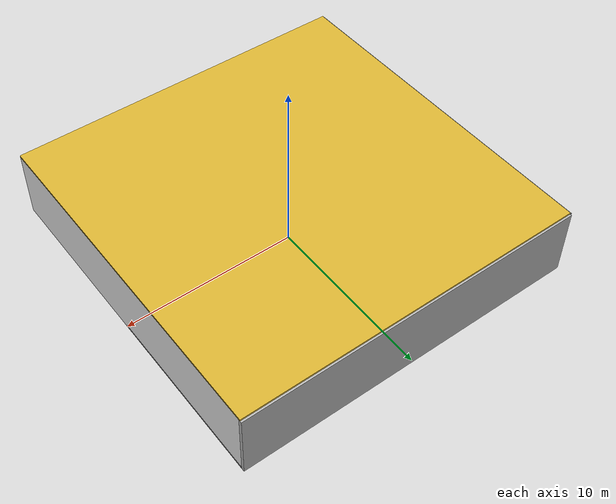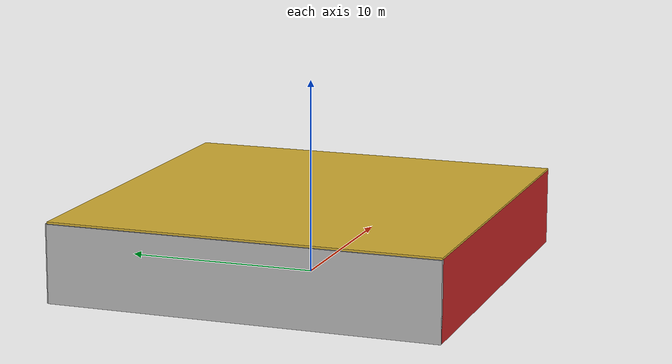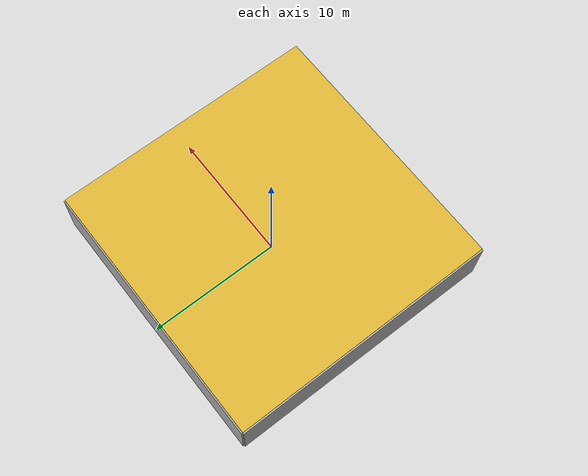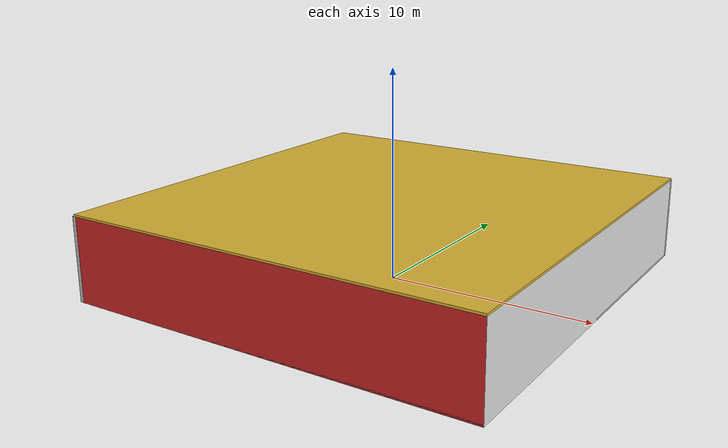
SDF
<sdf version="1.4">
 <world name="default">
  <physics type="ode">
   <max_step_size>0.001</max_step_size>
   <real_time_factor>1</real_time_factor>
   <real_time_update_rate>1000</real_time_update_rate>
   <gravity>0 0 -9.8</gravity>
  </physics>
  <scene><ambient>0.4 0.4 0.4 1</ambient><background>0.7 0.7 0.7 1</background><shadows>1</shadows></scene>
  <model name="Surrounding">
   <static>1</static>
   <link name="Ceiling">
    <collision name="Ceiling_Collision"><geometry><box><size>20 20 0.1</size></box></geometry></collision>
    <visual name="Ceiling_Visual">
     <geometry><box><size>20 20 0.1</size></box></geometry>
     <material>
      <script><uri>file://media/materials/scripts/gazebo.material</uri><name>Gazebo/Gold</name></script>
     </material>
    </visual>
    <pose>0 0 4.05 0 0 0</pose>
   </link>
   <link name="Wall_South">
    <collision name="Wall_South_Collision">
     <geometry><box><size>20 0 4</size></box></geometry>
     <pose>0 0 2 0 -0 0</pose>
    </collision>
    <visual name="Wall_South_Visual">
     <pose>0 0 2 0 -0 0</pose>
     <geometry><box><size>20 0 4</size></box></geometry>
     <material>
      <script><uri>file://media/materials/scripts/gazebo.material</uri><name>Gazebo/RedBright</name></script>
     </material>
    </visual>
    <velocity_decay><linear>0</linear><angular>0</angular></velocity_decay>
    <pose>0 -10 0 0 -0 0</pose>
   </link>
   <link name="Wall_East">
    <collision name="Wall_21_Collision">
     <geometry><box><size>20 0 4</size></box></geometry>
     <pose>0 0 2 0 -0 0</pose>
    </collision>
    <visual name="Wall_21_Visual">
     <pose>0 0 2 0 -0 0</pose>
     <geometry><box><size>20 0 4</size></box></geometry>
     <material>
      <script><uri>file://media/materials/scripts/gazebo.material</uri><name>Gazebo/WhiteGlow</name></script>
     </material>
    </visual>
    <velocity_decay><linear>0</linear><angular>0</angular></velocity_decay>
    <pose>10 0 0 0 -0 1.5708</pose>
   </link>
   <link name="Wall_North">
    <collision name="Wall_22_Collision">
     <geometry><box><size>20 0.2 4</size></box></geometry>
     <pose>0 0 2 0 -0 0</pose>
    </collision>
    <visual name="Wall_22_Visual">
     <pose>0 0 2 0 -0 0</pose>
     <geometry><box><size>20 0.2 4</size></box></geometry>
     <material>
      <script><uri>file://media/materials/scripts/gazebo.material</uri><name>Gazebo/LightOff</name></script>
     </material>
    </visual>
    <velocity_decay><linear>0</linear><angular>0</angular></velocity_decay>
    <pose>0 10 0 0 -0 0</pose>
   </link>
   <link name="Wall_West">
    <collision name="Wall_23_Collision">
     <geometry><box><size>20 0.2 4</size></box></geometry>
     <pose>0 0 2 0 -0 0</pose>
    </collision>
    <visual name="Wall_23_Visual">
     <pose>0 0 2 0 -0 0</pose>
     <geometry><box><size>20 0.2 4</size></box></geometry>
     <material>
      <script><uri>file://media/materials/scripts/gazebo.material</uri><name>Gazebo/LightOn</name></script>
     </material>
    </visual>
    <velocity_decay><linear>0</linear><angular>0</angular></velocity_decay>
    <pose>-10 0 0 0 0 -1.5708</pose>
   </link>
   <link name="Ground_link">
    <collision name="collision">
     <pose>0 0 .05 0 -0 0</pose>
     <geometry><box><size>20 20 0.1</size></box></geometry>
    </collision>
    <visual name="visual">
     <pose>0 0 .05 0 -0 0</pose>
     <geometry><box><size>20 20 0.1</size></box></geometry>
     <material>
      <script><uri>file://media/materials/scripts/gazebo.material</uri><name>Gazebo/PioneerBody</name></script>
     </material>
    </visual>
   </link>
   <static>1</static>
  </model>
  <spherical_coordinates>
   <surface_model>EARTH_WGS84</surface_model>
   <latitude_deg>0</latitude_deg>
   <longitude_deg>0</longitude_deg>
   <elevation>0</elevation>
   <heading_deg>0</heading_deg>
  </spherical_coordinates>
  <light name="lightball_0" type="diffuse">
   <diffuse>0.8 0.8 0.8 1</diffuse>
   <specular>0.2 0.2 0.2 1</specular>
   <attenuation>
    <range>100</range>
    <constant>0.7</constant>
    <linear>0.01</linear>
    <quadratic>0.001</quadratic>
   </attenuation>
   <direction>-0.5 0.1 -0.9</direction>
   <pose>-2.66896889986 -4.60320753518 0.541006762463 0 0 0</pose>
  </light>
  <light name="lightball_1" type="diffuse">
   <diffuse>0.8 0.8 0.8 1</diffuse>
   <specular>0.2 0.2 0.2 1</specular>
   <attenuation>
    <range>100</range>
    <constant>0.7</constant>
    <linear>0.01</linear>
    <quadratic>0.001</quadratic>
   </attenuation>
   <direction>-0.5 0.1 -0.9</direction>
   <pose>-7.22726843688 -3.70824557452 1.38775745398 0 0 0</pose>
  </light>
  <light name="lightball_2" type="diffuse">
   <diffuse>0.8 0.8 0.8 1</diffuse>
   <specular>0.2 0.2 0.2 1</specular>
   <attenuation>
    <range>100</range>
    <constant>0.7</constant>
    <linear>0.01</linear>
    <quadratic>0.001</quadratic>
   </attenuation>
   <direction>-0.5 0.1 -0.9</direction>
   <pose>-2.42441475463 -6.42170939559 2.32467919263 0 0 0</pose>
  </light>
  <light name="lightball_3" type="diffuse">
   <diffuse>0.8 0.8 0.8 1</diffuse>
   <specular>0.2 0.2 0.2 1</specular>
   <attenuation>
    <range>100</range>
    <constant>0.7</constant>
    <linear>0.01</linear>
    <quadratic>0.001</quadratic>
   </attenuation>
   <direction>-0.5 0.1 -0.9</direction>
   <pose>-5.24899428513 -4.59598100001 1.07209051572 0 0 0</pose>
  </light>
  <light name="lightball_4" type="diffuse">
   <diffuse>0.8 0.8 0.8 1</diffuse>
   <specular>0.2 0.2 0.2 1</specular>
   <attenuation>
    <range>100</range>
    <constant>0.7</constant>
    <linear>0.01</linear>
    <quadratic>0.001</quadratic>
   </attenuation>
   <direction>-0.5 0.1 -0.9</direction>
   <pose>4.1216534615 0.788283461238 1.79900620752 0 0 0</pose>
  </light>
  <light name="lightball_5" type="diffuse">
   <diffuse>0.8 0.8 0.8 1</diffuse>
   <specular>0.2 0.2 0.2 1</specular>
   <attenuation>
    <range>100</range>
    <constant>0.7</constant>
    <linear>0.01</linear>
    <quadratic>0.001</quadratic>
   </attenuation>
   <direction>-0.5 0.1 -0.9</direction>
   <pose>7.06971643446 3.00421557206 2.98070690885 0 0 0</pose>
  </light>
  <light name="lightball_6" type="diffuse">
   <diffuse>0.8 0.8 0.8 1</diffuse>
   <specular>0.2 0.2 0.2 1</specular>
   <attenuation>
    <range>100</range>
    <constant>0.7</constant>
    <linear>0.01</linear>
    <quadratic>0.001</quadratic>
   </attenuation>
   <direction>-0.5 0.1 -0.9</direction>
   <pose>4.28068776974 -2.35968477386 3.02693951018 0 0 0</pose>
  </light>
  <light name="lightball_7" type="diffuse">
   <diffuse>0.8 0.8 0.8 1</diffuse>
   <specular>0.2 0.2 0.2 1</specular>
   <attenuation>
    <range>100</range>
    <constant>0.7</constant>
    <linear>0.01</linear>
    <quadratic>0.001</quadratic>
   </attenuation>
   <direction>-0.5 0.1 -0.9</direction>
   <pose>9.86762816941 8.47424590435 2.81358369539 0 0 0</pose>
  </light>
  <light name="lightball_8" type="diffuse">
   <diffuse>0.8 0.8 0.8 1</diffuse>
   <specular>0.2 0.2 0.2 1</specular>
   <attenuation>
    <range>100</range>
    <constant>0.7</constant>
    <linear>0.01</linear>
    <quadratic>0.001</quadratic>
   </attenuation>
   <direction>-0.5 0.1 -0.9</direction>
   <pose>6.78548331039 6.55266945661 3.46848315248 0 0 0</pose>
  </light>
  <light name="lightball_9" type="diffuse">
   <diffuse>0.8 0.8 0.8 1</diffuse>
   <specular>0.2 0.2 0.2 1</specular>
   <attenuation>
    <range>100</range>
    <constant>0.7</constant>
    <linear>0.01</linear>
    <quadratic>0.001</quadratic>
   </attenuation>
   <direction>-0.5 0.1 -0.9</direction>
   <pose>-7.6529214208 -9.97286272561 1.970411137 0 0 0</pose>
  </light>
  <light name="lightball_10" type="diffuse">
   <diffuse>0.8 0.8 0.8 1</diffuse>
   <specular>0.2 0.2 0.2 1</specular>
   <attenuation>
    <range>100</range>
    <constant>0.7</constant>
    <linear>0.01</linear>
    <quadratic>0.001</quadratic>
   </attenuation>
   <direction>-0.5 0.1 -0.9</direction>
   <pose>-4.90379001853 -2.33262681008 1.85543566031 0 0 0</pose>
  </light>
  <light name="lightball_11" type="diffuse">
   <diffuse>0.8 0.8 0.8 1</diffuse>
   <specular>0.2 0.2 0.2 1</specular>
   <attenuation>
    <range>100</range>
    <constant>0.7</constant>
    <linear>0.01</linear>
    <quadratic>0.001</quadratic>
   </attenuation>
   <direction>-0.5 0.1 -0.9</direction>
   <pose>-2.00778962198 8.38834282343 2.97022759042 0 0 0</pose>
  </light>
  <light name="lightball_12" type="diffuse">
   <diffuse>0.8 0.8 0.8 1</diffuse>
   <specular>0.2 0.2 0.2 1</specular>
   <attenuation>
    <range>100</range>
    <constant>0.7</constant>
    <linear>0.01</linear>
    <quadratic>0.001</quadratic>
   </attenuation>
   <direction>-0.5 0.1 -0.9</direction>
   <pose>5.31021463211 -7.89478100821 1.75910951847 0 0 0</pose>
  </light>
  <light name="lightball_13" type="diffuse">
   <diffuse>0.8 0.8 0.8 1</diffuse>
   <specular>0.2 0.2 0.2 1</specular>
   <attenuation>
    <range>100</range>
    <constant>0.7</constant>
    <linear>0.01</linear>
    <quadratic>0.001</quadratic>
   </attenuation>
   <direction>-0.5 0.1 -0.9</direction>
   <pose>-0.279655871434 2.33855270918 2.42705026956 0 0 0</pose>
  </light>
  <include>
   <uri>model://textured_shapes</uri>
   <pose>-0.965278353815 1.20327521848 0 0 0 0.117621628258</pose>
  </include>
  <include>
   <uri>model://robocup_3Dsim_goal</uri>
   <pose>0.722212681471 -0.835060549206 0 0 0 0.582981793524</pose>
  </include>
  <include>
   <uri>model://construction_cone</uri>
   <pose>7.43878054445 -5.02281289972 0 0 0 1.50741955671</pose>
  </include>
 </world>
</sdf>

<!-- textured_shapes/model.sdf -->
<sdf version="1.6">
  <model name="textured_shapes">
    <pose>0 0 0.5 0 0 0</pose>
    <link name="box">
      <pose>0 -1.5 0 0 0 0</pose>
      <collision name="collision">
        <geometry>
          <box>
            <size>1 1 1</size>
          </box>
        </geometry>
      </collision>
      <visual name="visual">
        <geometry>
          <box>
            <size>1 1 1</size>
          </box>
        </geometry>
        <material>
          <script>
            <uri>model://../model_source/models/textured_shapes/materials/scripts</uri>
            <uri>model://../model_source/models/textured_shapes/materials/textures</uri>
            <name>TexturedShape/Squares</name>
          </script>
        </material>
      </visual>
    </link>
    <link name="sphere">
      <collision name="collision">
        <geometry>
          <sphere>
            <radius>0.5</radius>
          </sphere>
        </geometry>
      </collision>
      <visual name="visual">
        <geometry>
          <sphere>
            <radius>0.5</radius>
          </sphere>
        </geometry>
        <material>
          <script>
            <uri>model://../model_source/models/textured_shapes/materials/scripts</uri>
            <uri>model://../model_source/models/textured_shapes/materials/textures</uri>
            <name>TexturedShape/Squares</name>
          </script>
        </material>
      </visual>
    </link>
    <link name="cylinder">
      <pose>0 1.5 0 0 0 0</pose>
      <collision name="collision">
        <geometry>
          <cylinder>
            <radius>0.5</radius>
            <length>1</length>
          </cylinder>
        </geometry>
      </collision>
      <visual name="visual">
        <geometry>
          <cylinder>
            <radius>0.5</radius>
            <length>1</length>
          </cylinder>
        </geometry>
        <material>
          <script>
            <uri>model://../model_source/models/textured_shapes/materials/scripts</uri>
            <uri>model://../model_source/models/textured_shapes/materials/textures</uri>
            <name>TexturedShape/Squares</name>
          </script>
        </material>
      </visual>
    </link>
  </model>
</sdf>

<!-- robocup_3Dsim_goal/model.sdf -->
<sdf version="1.5">
  <model name="robocup_3d_goal">
    <static>true</static>
    <link name="left_post">
      <pose>0 1.05 0.45 0 0 0</pose>
      <collision name="collision">
        <geometry>
          <cylinder>
            <radius>0.05</radius>
            <length>0.9</length>
          </cylinder>
        </geometry>
      </collision>
      <visual name="visual">
        <geometry>
          <cylinder>
            <radius>0.05</radius>
            <length>0.9</length>
          </cylinder>
        </geometry>
        <material>
          <script>
            <uri>file://media/materials/scripts/gazebo.material</uri>
            <name>Gazebo/ZincYellow</name>
          </script>
        </material>
      </visual>
    </link>
    <link name="left_support_horiz_lower">
      <pose>0.30 1.05 0.01 0 0 0</pose>
      <collision name="collision">
        <geometry>
          <box>
            <size>0.50 0.02 0.02</size>
          </box>
        </geometry>
      </collision>
      <visual name="visual">
        <geometry>
          <box>
            <size>0.50 0.02 0.02</size>
          </box>
        </geometry>
        <material>
          <script>
            <uri>file://media/materials/scripts/gazebo.material</uri>
            <name>Gazebo/White</name>
          </script>
        </material>
      </visual>
    </link>
    <link name="left_support_horiz_upper">
      <pose>0.30 1.05 0.79 0 0 0</pose>
      <collision name="collision">
        <geometry>
          <box>
            <size>0.50 0.02 0.02</size>
          </box>
        </geometry>
      </collision>
      <visual name="visual">
        <geometry>
          <box>
            <size>0.50 0.02 0.02</size>
          </box>
        </geometry>
        <material>
          <script>
            <uri>file://media/materials/scripts/gazebo.material</uri>
            <name>Gazebo/White</name>
          </script>
        </material>
      </visual>
    </link>
    <link name="left_support_vertical">
      <pose>0.56 1.05 0.4 0 1.5708 0</pose>
      <collision name="collision">
        <geometry>
          <box>
            <size>0.80 0.02 0.02</size>
          </box>
        </geometry>
      </collision>
      <visual name="visual">
        <geometry>
          <box>
            <size>0.80 0.02 0.02</size>
          </box>
        </geometry>
        <material>
          <script>
            <uri>file://media/materials/scripts/gazebo.material</uri>
            <name>Gazebo/White</name>
          </script>
        </material>
      </visual>
    </link>
    <link name="right_support_horiz_lower">
      <pose>0.30 -1.05 0.01 0 0 0</pose>
      <collision name="collision">
        <geometry>
          <box>
            <size>0.50 0.02 0.02</size>
          </box>
        </geometry>
      </collision>
      <visual name="visual">
        <geometry>
          <box>
            <size>0.50 0.02 0.02</size>
          </box>
        </geometry>
        <material>
          <script>
            <uri>file://media/materials/scripts/gazebo.material</uri>
            <name>Gazebo/White</name>
          </script>
        </material>
      </visual>
    </link>
    <link name="right_support_horiz_upper">
      <pose>0.30 -1.05 0.79 0 0 0</pose>
      <collision name="collision">
        <geometry>
          <box>
            <size>0.50 0.02 0.02</size>
          </box>
        </geometry>
      </collision>
      <visual name="visual">
        <geometry>
          <box>
            <size>0.50 0.02 0.02</size>
          </box>
        </geometry>
        <material>
          <script>
            <uri>file://media/materials/scripts/gazebo.material</uri>
            <name>Gazebo/White</name>
          </script>
        </material>
      </visual>
    </link>
    <link name="right_support_vertical">
      <pose>0.56 -1.05 0.4 0 1.5708 0</pose>
      <collision name="collision">
        <geometry>
          <box>
            <size>0.80 0.02 0.02</size>
          </box>
        </geometry>
      </collision>
      <visual name="visual">
        <geometry>
          <box>
            <size>0.80 0.02 0.02</size>
          </box>
        </geometry>
        <material>
          <script>
            <uri>file://media/materials/scripts/gazebo.material</uri>
            <name>Gazebo/White</name>
          </script>
        </material>
      </visual>
    </link>
    <link name="center_support_horiz_lower">
      <pose>0.56 0 0.01 0 1.5708 0</pose>
      <collision name="collision">
        <geometry>
          <box>
            <size>0.02 2.08 0.02</size>
          </box>
        </geometry>
      </collision>
      <visual name="visual">
        <geometry>
          <box>
            <size>0.02 2.08 0.02</size>
          </box>
        </geometry>
        <material>
          <script>
            <uri>file://media/materials/scripts/gazebo.material</uri>
            <name>Gazebo/White</name>
          </script>
        </material>
      </visual>
    </link>
    <link name="center_support_horiz_upper">
      <pose>0.56 0 0.79 0 1.5708 0</pose>
      <collision name="collision">
        <geometry>
          <box>
            <size>0.02 2.08 0.02</size>
          </box>
        </geometry>
      </collision>
      <visual name="visual">
        <geometry>
          <box>
            <size>0.02 2.08 0.02</size>
          </box>
        </geometry>
        <material>
          <script>
            <uri>file://media/materials/scripts/gazebo.material</uri>
            <name>Gazebo/White</name>
          </script>
        </material>
      </visual>
    </link>
    <link name="right_post">
      <pose>0 -1.05 0.45 0 0 0</pose>
      <collision name="collision">
        <geometry>
          <cylinder>
            <radius>0.05</radius>
            <length>0.9</length>
          </cylinder>
        </geometry>
      </collision>
      <visual name="visual">
        <geometry>
          <cylinder>
            <radius>0.05</radius>
            <length>0.9</length>
          </cylinder>
        </geometry>
        <material>
          <script>
            <uri>file://media/materials/scripts/gazebo.material</uri>
            <name>Gazebo/ZincYellow</name>
          </script>
        </material>
      </visual>
    </link>
    <link name="crossbar">
      <pose>0 0 0.85 1.57 1.57 0</pose>
      <collision name="collision">
        <geometry>
          <cylinder>
            <radius>0.05</radius>
            <length>2.0</length>
          </cylinder>
        </geometry>
      </collision>
      <visual name="visual">
        <geometry>
          <cylinder>
            <radius>0.05</radius>
            <length>2.0</length>
          </cylinder>
        </geometry>
        <material>
          <script>
            <uri>file://media/materials/scripts/gazebo.material</uri>
            <name>Gazebo/ZincYellow</name>
          </script>
        </material>
      </visual>
    </link>
    <link name="center_net">
      <pose>0.56 0 0.40 0 0 0</pose>
      <collision name="collision">
        <geometry>
          <box>
            <size>0.01 2.1 0.80</size>
          </box>
        </geometry>
      </collision>
      <visual name="visual">
        <geometry>
          <box>
            <size>0.01 2.1 0.80</size>
          </box>
        </geometry>
        <material>
          <script>
            <uri>model://../model_source/models/robocup09_spl_field/materials/scripts/</uri>
            <uri>model://../model_source/models/robocup09_spl_field/materials/textures/</uri>
            <name>RoboCup/Net</name>
          </script>
        </material>
      </visual>
    </link>
    <link name="left_net">
      <pose>0.30 1.05 0.40 0 0 0</pose>
      <collision name="collision">
        <geometry>
          <box>
            <size>0.50 0.01 0.76</size>
          </box>
        </geometry>
      </collision>
      <visual name="visual">
        <geometry>
          <box>
            <size>0.50 0.01 0.76</size>
          </box>
        </geometry>
        <material>
          <script>
            <uri>model://../model_source/models/robocup09_spl_field/materials/scripts/</uri>
            <uri>model://../model_source/models/robocup09_spl_field/materials/textures/</uri>
            <name>RoboCup/Net</name>
          </script>
        </material>
      </visual>
    </link>
    <link name="right_net">
      <pose>0.30 -1.05 0.40 0 0 0</pose>
      <collision name="collision">
        <geometry>
          <box>
            <size>0.50 0.01 0.76</size>
          </box>
        </geometry>
      </collision>
      <visual name="visual">
        <geometry>
          <box>
            <size>0.50 0.01 0.76</size>
          </box>
        </geometry>
        <material>
          <script>
            <uri>model://../model_source/models/robocup09_spl_field/materials/scripts/</uri>
            <uri>model://../model_source/models/robocup09_spl_field/materials/textures/</uri>
            <name>RoboCup/Net</name>
          </script>
        </material>
      </visual>
    </link>
  </model>
</sdf>

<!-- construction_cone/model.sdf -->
<sdf version="1.5">
  <model name="Construction Cone">
    <link name="link">
      <collision name="collision">
        <geometry>
          <mesh>
            <scale>10 10 10</scale>
            <uri>file://isr-testbed/construction_cone/meshes/construction_cone.dae</uri>
          </mesh>
        </geometry>
      </collision>
      <visual name="visual">
        <geometry>
          <mesh>
            <scale>10 10 10</scale>
            <uri>file://isr-testbed/construction_cone/meshes/construction_cone.dae</uri>
          </mesh>
        </geometry>
      </visual>
    </link>
  </model>
</sdf>
